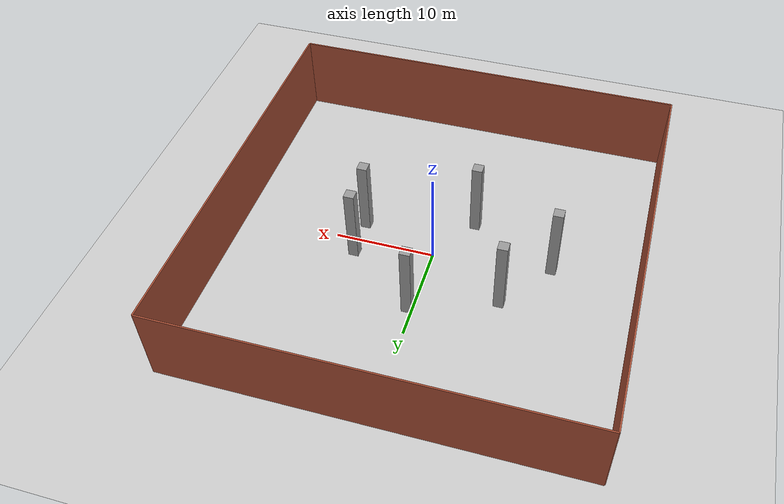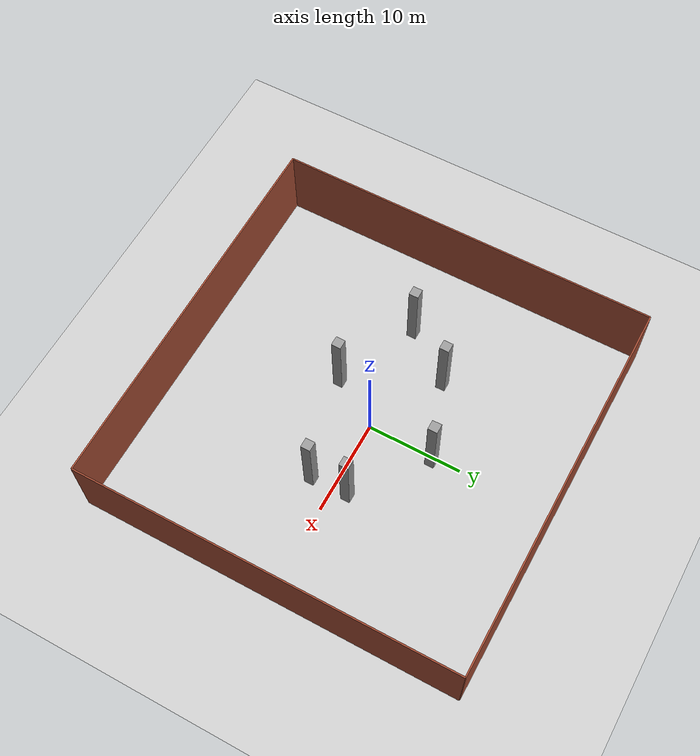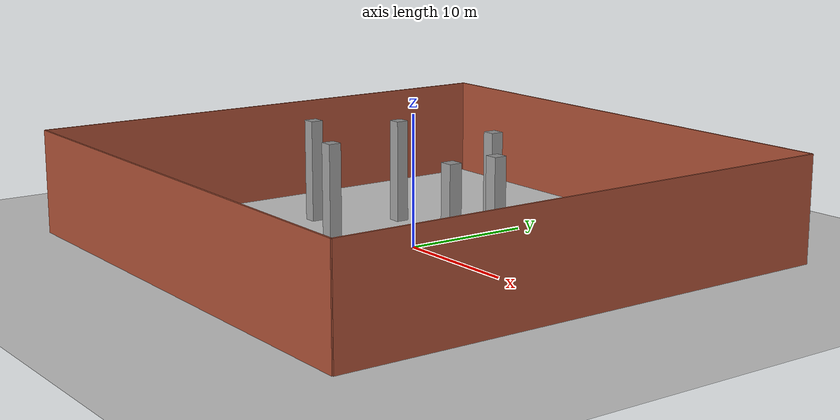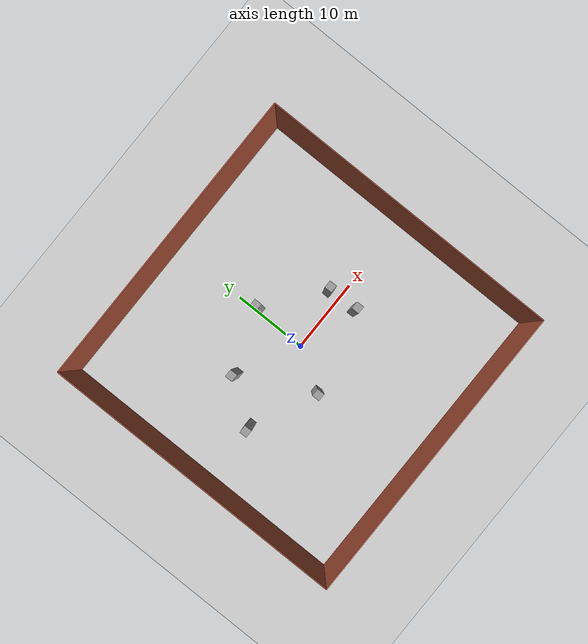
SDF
<sdf version="1.7">
 <world name="default">
  <light name="sun" type="directional">
   <pose>0 0 10 0 -0 0</pose>
   <diffuse>0.8 0.8 0.8 1</diffuse>
   <specular>0.2 0.2 0.2 1</specular>
   <attenuation>
    <range>1000</range>
    <constant>0.9</constant>
    <linear>0.01</linear>
    <quadratic>0.001</quadratic>
   </attenuation>
   <direction>-0.5 0.1 -0.9</direction>
   <spot><inner_angle>0</inner_angle><outer_angle>0</outer_angle><falloff>0</falloff></spot>
  </light>
  <model name="ground_plane">
   <static>1</static>
   <link name="link">
    <collision name="collision">
     <geometry><plane><normal>0 0 1</normal><size>100 100</size></plane></geometry>
     <surface>
      <contact><collide_bitmask>65535</collide_bitmask></contact>
      <friction><ode><mu>100</mu><mu2>50</mu2></ode></friction>
     </surface>
    </collision>
    <visual name="visual">
     <cast_shadows>0</cast_shadows>
     <geometry><plane><normal>0 0 1</normal><size>100 100</size></plane></geometry>
     <material>
      <script><uri>file://media/materials/scripts/gazebo.material</uri><name>Gazebo/Grey</name></script>
     </material>
    </visual>
   </link>
  </model>
  <gravity>0 0 -9.8</gravity>
  <magnetic_field>6e-06 2.3e-05 -4.2e-05</magnetic_field>
  <atmosphere type="adiabatic"/>
  <physics type="ode">
   <max_step_size>0.001</max_step_size>
   <real_time_factor>1</real_time_factor>
   <real_time_update_rate>1000</real_time_update_rate>
  </physics>
  <scene><ambient>0.4 0.4 0.4 1</ambient><background>0.7 0.7 0.7 1</background><shadows>1</shadows></scene>
  <spherical_coordinates>
   <surface_model>EARTH_WGS84</surface_model>
   <latitude_deg>0</latitude_deg>
   <longitude_deg>0</longitude_deg>
   <elevation>0</elevation>
   <heading_deg>0</heading_deg>
  </spherical_coordinates>
  <model name="sim_room_square">
   <link name="Wall_14">
    <collision name="Wall_14_Collision">
     <geometry><box><size>40 0.15 8</size></box></geometry>
     <pose>0 0 4 0 -0 0</pose>
    </collision>
    <visual name="Wall_14_Visual">
     <pose>0 0 4 0 -0 0</pose>
     <geometry><box><size>40 0.15 8</size></box></geometry>
     <material>
      <script><uri>file://media/materials/scripts/gazebo.material</uri><name>Gazebo/Bricks</name></script>
      <ambient>1 1 1 1</ambient>
     </material>
     <meta><layer>0</layer></meta>
    </visual>
    <pose>20 -0 0 0 -0 -1.5708</pose>
   </link>
   <link name="Wall_15">
    <collision name="Wall_15_Collision">
     <geometry><box><size>40 0.15 8</size></box></geometry>
     <pose>0 0 4 0 -0 0</pose>
    </collision>
    <visual name="Wall_15_Visual">
     <pose>0 0 4 0 -0 0</pose>
     <geometry><box><size>40 0.15 8</size></box></geometry>
     <material>
      <script><uri>file://media/materials/scripts/gazebo.material</uri><name>Gazebo/Bricks</name></script>
      <ambient>1 1 1 1</ambient>
     </material>
     <meta><layer>0</layer></meta>
    </visual>
    <pose>0 -20 0 0 -0 3.14159</pose>
   </link>
   <link name="Wall_16">
    <collision name="Wall_16_Collision">
     <geometry><box><size>40 0.15 8</size></box></geometry>
     <pose>0 0 4 0 -0 0</pose>
    </collision>
    <visual name="Wall_16_Visual">
     <pose>0 0 4 0 -0 0</pose>
     <geometry><box><size>40 0.15 8</size></box></geometry>
     <material>
      <script><uri>file://media/materials/scripts/gazebo.material</uri><name>Gazebo/Bricks</name></script>
      <ambient>1 1 1 1</ambient>
     </material>
     <meta><layer>0</layer></meta>
    </visual>
    <pose>-20 -0 0 0 -0 1.5708</pose>
   </link>
   <link name="Wall_19">
    <collision name="Wall_19_Collision">
     <geometry><box><size>40 0.15 8</size></box></geometry>
     <pose>0 0 4 0 -0 0</pose>
    </collision>
    <visual name="Wall_19_Visual">
     <pose>0 0 4 0 -0 0</pose>
     <geometry><box><size>40 0.15 8</size></box></geometry>
     <material>
      <script><uri>file://media/materials/scripts/gazebo.material</uri><name>Gazebo/Bricks</name></script>
      <ambient>1 1 1 1</ambient>
     </material>
     <meta><layer>0</layer></meta>
    </visual>
    <pose>0 20 0 0 -0 0</pose>
   </link>
   <static>1</static>
  </model>
  <model name="unit_box_static_clone_63">
   <link name="link">
    <inertial>
     <mass>1</mass>
     <inertia>
      <ixx>0.166667</ixx>
      <ixy>0</ixy>
      <ixz>0</ixz>
      <iyy>0.166667</iyy>
      <iyz>0</iyz>
      <izz>0.166667</izz>
     </inertia>
    </inertial>
    <visual name="visual">
     <geometry><box><size>1 1 8</size></box></geometry>
     <material>
      <script><name>Gazebo/Grey</name><uri>file://media/materials/scripts/gazebo.material</uri></script>
      <shader type="pixel"/>
     </material>
    </visual>
    <collision name="collision">
     <geometry><box><size>1 1 8</size></box></geometry>
     <surface>
      <friction>
       <ode><mu>1</mu><mu2>1</mu2><fdir1>0 0 0</fdir1><slip1>0</slip1><slip2>0</slip2></ode>
       <torsional>
        <coefficient>1</coefficient>
        <patch_radius>0</patch_radius>
        <surface_radius>0</surface_radius>
        <use_patch_radius>1</use_patch_radius>
        <ode><slip>0</slip></ode>
       </torsional>
      </friction>
      <bounce><restitution_coefficient>0</restitution_coefficient><threshold>1e+06</threshold></bounce>
      <contact>
       <collide_without_contact>0</collide_without_contact>
       <collide_without_contact_bitmask>1</collide_without_contact_bitmask>
       <collide_bitmask>1</collide_bitmask>
       <ode>
        <soft_cfm>0</soft_cfm>
        <soft_erp>0.2</soft_erp>
        <kp>1e+13</kp>
        <kd>1</kd>
        <max_vel>0.01</max_vel>
        <min_depth>0</min_depth>
       </ode>
       <bullet>
        <split_impulse>1</split_impulse>
        <split_impulse_penetration_threshold>-0.01</split_impulse_penetration_threshold>
        <soft_cfm>0</soft_cfm>
        <soft_erp>0.2</soft_erp>
        <kp>1e+13</kp>
        <kd>1</kd>
       </bullet>
      </contact>
     </surface>
    </collision>
   </link>
   <static>1</static>
   <pose>7.57012 1.62681 4 0 -0 0</pose>
  </model>
  <model name="unit_box_static_clone_64">
   <link name="link">
    <inertial>
     <mass>1</mass>
     <inertia>
      <ixx>0.166667</ixx>
      <ixy>0</ixy>
      <ixz>0</ixz>
      <iyy>0.166667</iyy>
      <iyz>0</iyz>
      <izz>0.166667</izz>
     </inertia>
    </inertial>
    <visual name="visual">
     <geometry><box><size>1 1 8</size></box></geometry>
     <material>
      <script><name>Gazebo/Grey</name><uri>file://media/materials/scripts/gazebo.material</uri></script>
      <shader type="pixel"/>
     </material>
    </visual>
    <collision name="collision">
     <geometry><box><size>1 1 8</size></box></geometry>
     <surface>
      <friction>
       <ode><mu>1</mu><mu2>1</mu2><fdir1>0 0 0</fdir1><slip1>0</slip1><slip2>0</slip2></ode>
       <torsional>
        <coefficient>1</coefficient>
        <patch_radius>0</patch_radius>
        <surface_radius>0</surface_radius>
        <use_patch_radius>1</use_patch_radius>
        <ode><slip>0</slip></ode>
       </torsional>
      </friction>
      <bounce><restitution_coefficient>0</restitution_coefficient><threshold>1e+06</threshold></bounce>
      <contact>
       <collide_without_contact>0</collide_without_contact>
       <collide_without_contact_bitmask>1</collide_without_contact_bitmask>
       <collide_bitmask>1</collide_bitmask>
       <ode>
        <soft_cfm>0</soft_cfm>
        <soft_erp>0.2</soft_erp>
        <kp>1e+13</kp>
        <kd>1</kd>
        <max_vel>0.01</max_vel>
        <min_depth>0</min_depth>
       </ode>
       <bullet>
        <split_impulse>1</split_impulse>
        <split_impulse_penetration_threshold>-0.01</split_impulse_penetration_threshold>
        <soft_cfm>0</soft_cfm>
        <soft_erp>0.2</soft_erp>
        <kp>1e+13</kp>
        <kd>1</kd>
       </bullet>
      </contact>
     </surface>
    </collision>
   </link>
   <static>1</static>
   <pose>-11.6642 -1.25308 4 0 -0 0</pose>
  </model>
  <model name="unit_box_static_clone_65">
   <link name="link">
    <inertial>
     <mass>1</mass>
     <inertia>
      <ixx>0.166667</ixx>
      <ixy>0</ixy>
      <ixz>0</ixz>
      <iyy>0.166667</iyy>
      <iyz>0</iyz>
      <izz>0.166667</izz>
     </inertia>
    </inertial>
    <visual name="visual">
     <geometry><box><size>1 1 8</size></box></geometry>
     <material>
      <script><name>Gazebo/Grey</name><uri>file://media/materials/scripts/gazebo.material</uri></script>
      <shader type="pixel"/>
     </material>
    </visual>
    <collision name="collision">
     <geometry><box><size>1 1 8</size></box></geometry>
     <surface>
      <friction>
       <ode><mu>1</mu><mu2>1</mu2><fdir1>0 0 0</fdir1><slip1>0</slip1><slip2>0</slip2></ode>
       <torsional>
        <coefficient>1</coefficient>
        <patch_radius>0</patch_radius>
        <surface_radius>0</surface_radius>
        <use_patch_radius>1</use_patch_radius>
        <ode><slip>0</slip></ode>
       </torsional>
      </friction>
      <bounce><restitution_coefficient>0</restitution_coefficient><threshold>1e+06</threshold></bounce>
      <contact>
       <collide_without_contact>0</collide_without_contact>
       <collide_without_contact_bitmask>1</collide_without_contact_bitmask>
       <collide_bitmask>1</collide_bitmask>
       <ode>
        <soft_cfm>0</soft_cfm>
        <soft_erp>0.2</soft_erp>
        <kp>1e+13</kp>
        <kd>1</kd>
        <max_vel>0.01</max_vel>
        <min_depth>0</min_depth>
       </ode>
       <bullet>
        <split_impulse>1</split_impulse>
        <split_impulse_penetration_threshold>-0.01</split_impulse_penetration_threshold>
        <soft_cfm>0</soft_cfm>
        <soft_erp>0.2</soft_erp>
        <kp>1e+13</kp>
        <kd>1</kd>
       </bullet>
      </contact>
     </surface>
    </collision>
   </link>
   <static>1</static>
   <pose>7.64772 -2.33988 4 0 -0 0</pose>
  </model>
  <model name="unit_box_static_clone_66">
   <link name="link">
    <inertial>
     <mass>1</mass>
     <inertia>
      <ixx>0.166667</ixx>
      <ixy>0</ixy>
      <ixz>0</ixz>
      <iyy>0.166667</iyy>
      <iyz>0</iyz>
      <izz>0.166667</izz>
     </inertia>
    </inertial>
    <visual name="visual">
     <geometry><box><size>1 1 8</size></box></geometry>
     <material>
      <script><name>Gazebo/Grey</name><uri>file://media/materials/scripts/gazebo.material</uri></script>
      <shader type="pixel"/>
     </material>
    </visual>
    <collision name="collision">
     <geometry><box><size>1 1 8</size></box></geometry>
     <surface>
      <friction>
       <ode><mu>1</mu><mu2>1</mu2><fdir1>0 0 0</fdir1><slip1>0</slip1><slip2>0</slip2></ode>
       <torsional>
        <coefficient>1</coefficient>
        <patch_radius>0</patch_radius>
        <surface_radius>0</surface_radius>
        <use_patch_radius>1</use_patch_radius>
        <ode><slip>0</slip></ode>
       </torsional>
      </friction>
      <bounce><restitution_coefficient>0</restitution_coefficient><threshold>1e+06</threshold></bounce>
      <contact>
       <collide_without_contact>0</collide_without_contact>
       <collide_without_contact_bitmask>1</collide_without_contact_bitmask>
       <collide_bitmask>1</collide_bitmask>
       <ode>
        <soft_cfm>0</soft_cfm>
        <soft_erp>0.2</soft_erp>
        <kp>1e+13</kp>
        <kd>1</kd>
        <max_vel>0.01</max_vel>
        <min_depth>0</min_depth>
       </ode>
       <bullet>
        <split_impulse>1</split_impulse>
        <split_impulse_penetration_threshold>-0.01</split_impulse_penetration_threshold>
        <soft_cfm>0</soft_cfm>
        <soft_erp>0.2</soft_erp>
        <kp>1e+13</kp>
        <kd>1</kd>
       </bullet>
      </contact>
     </surface>
    </collision>
   </link>
   <static>1</static>
   <pose>-3.08443 -5.13543 4 0 -0 0</pose>
  </model>
  <model name="unit_box_static_clone_67">
   <link name="link">
    <inertial>
     <mass>1</mass>
     <inertia>
      <ixx>0.166667</ixx>
      <ixy>0</ixy>
      <ixz>0</ixz>
      <iyy>0.166667</iyy>
      <iyz>0</iyz>
      <izz>0.166667</izz>
     </inertia>
    </inertial>
    <visual name="visual">
     <geometry><box><size>1 1 8</size></box></geometry>
     <material>
      <script><name>Gazebo/Grey</name><uri>file://media/materials/scripts/gazebo.material</uri></script>
      <shader type="pixel"/>
     </material>
    </visual>
    <collision name="collision">
     <geometry><box><size>1 1 8</size></box></geometry>
     <surface>
      <friction>
       <ode><mu>1</mu><mu2>1</mu2><fdir1>0 0 0</fdir1><slip1>0</slip1><slip2>0</slip2></ode>
       <torsional>
        <coefficient>1</coefficient>
        <patch_radius>0</patch_radius>
        <surface_radius>0</surface_radius>
        <use_patch_radius>1</use_patch_radius>
        <ode><slip>0</slip></ode>
       </torsional>
      </friction>
      <bounce><restitution_coefficient>0</restitution_coefficient><threshold>1e+06</threshold></bounce>
      <contact>
       <collide_without_contact>0</collide_without_contact>
       <collide_without_contact_bitmask>1</collide_without_contact_bitmask>
       <collide_bitmask>1</collide_bitmask>
       <ode>
        <soft_cfm>0</soft_cfm>
        <soft_erp>0.2</soft_erp>
        <kp>1e+13</kp>
        <kd>1</kd>
        <max_vel>0.01</max_vel>
        <min_depth>0</min_depth>
       </ode>
       <bullet>
        <split_impulse>1</split_impulse>
        <split_impulse_penetration_threshold>-0.01</split_impulse_penetration_threshold>
        <soft_cfm>0</soft_cfm>
        <soft_erp>0.2</soft_erp>
        <kp>1e+13</kp>
        <kd>1</kd>
       </bullet>
      </contact>
     </surface>
    </collision>
   </link>
   <static>1</static>
   <pose>-7.67838 4.12002 4 0 -0 0</pose>
  </model>
  <model name="unit_box_static_clone_68">
   <link name="link">
    <inertial>
     <mass>1</mass>
     <inertia>
      <ixx>0.166667</ixx>
      <ixy>0</ixy>
      <ixz>0</ixz>
      <iyy>0.166667</iyy>
      <iyz>0</iyz>
      <izz>0.166667</izz>
     </inertia>
    </inertial>
    <visual name="visual">
     <geometry><box><size>1 1 8</size></box></geometry>
     <material>
      <script><name>Gazebo/Grey</name><uri>file://media/materials/scripts/gazebo.material</uri></script>
      <shader type="pixel"/>
     </material>
    </visual>
    <collision name="collision">
     <geometry><box><size>1 1 8</size></box></geometry>
     <surface>
      <friction>
       <ode><mu>1</mu><mu2>1</mu2><fdir1>0 0 0</fdir1><slip1>0</slip1><slip2>0</slip2></ode>
       <torsional>
        <coefficient>1</coefficient>
        <patch_radius>0</patch_radius>
        <surface_radius>0</surface_radius>
        <use_patch_radius>1</use_patch_radius>
        <ode><slip>0</slip></ode>
       </torsional>
      </friction>
      <bounce><restitution_coefficient>0</restitution_coefficient><threshold>1e+06</threshold></bounce>
      <contact>
       <collide_without_contact>0</collide_without_contact>
       <collide_without_contact_bitmask>1</collide_without_contact_bitmask>
       <collide_bitmask>1</collide_bitmask>
       <ode>
        <soft_cfm>0</soft_cfm>
        <soft_erp>0.2</soft_erp>
        <kp>1e+13</kp>
        <kd>1</kd>
        <max_vel>0.01</max_vel>
        <min_depth>0</min_depth>
       </ode>
       <bullet>
        <split_impulse>1</split_impulse>
        <split_impulse_penetration_threshold>-0.01</split_impulse_penetration_threshold>
        <soft_cfm>0</soft_cfm>
        <soft_erp>0.2</soft_erp>
        <kp>1e+13</kp>
        <kd>1</kd>
       </bullet>
      </contact>
     </surface>
    </collision>
   </link>
   <static>1</static>
   <pose>0.451473 7.06964 4 0 -0 0</pose>
  </model>
 </world>
</sdf>
